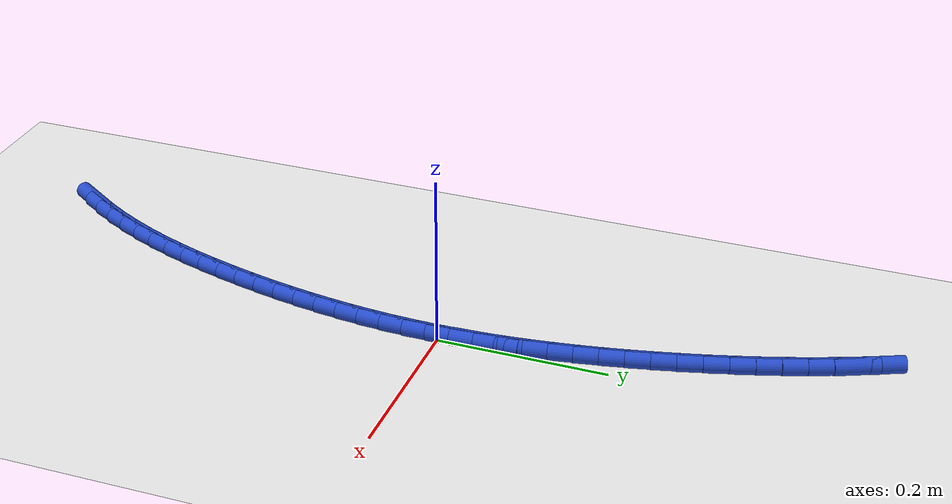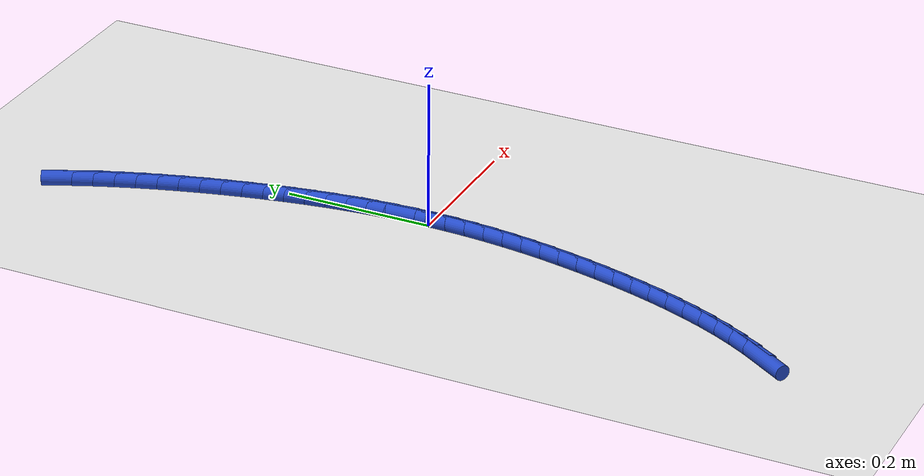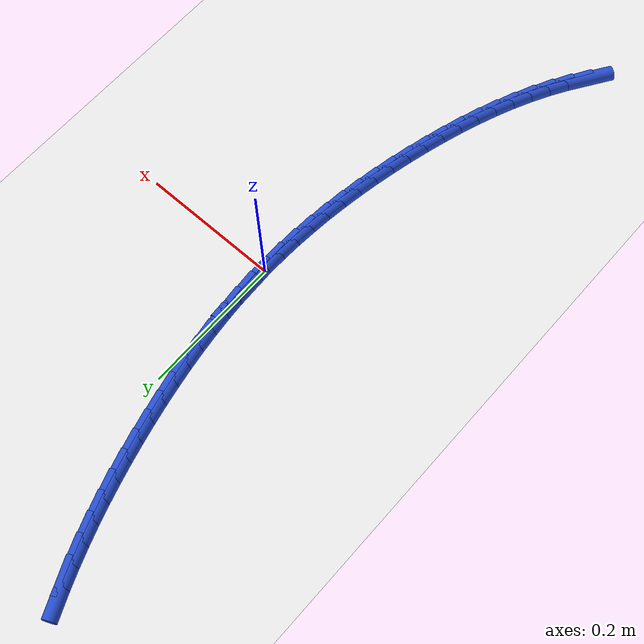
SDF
<sdf version="1.6">
 <world name="default">
  <model name="ground_plane">
   <static>1</static>
   <link name="link">
    <collision name="collision">
     <geometry><plane><normal>0 0 1</normal><size>100 100</size></plane></geometry>
     <surface><friction><ode><mu>100</mu><mu2>50</mu2></ode></friction></surface>
    </collision>
    <visual name="visual">
     <cast_shadows>0</cast_shadows>
     <geometry><plane><normal>0 0 1</normal><size>100 100</size></plane></geometry>
     <material>
      <script><uri>file://media/materials/scripts/gazebo.material</uri><name>Gazebo/WhiteGlow</name></script>
     </material>
    </visual>
   </link>
  </model>
  <model name="line">
   <link name="link_0">
    <pose>6.938893903907228e-18 2.7755575615628914e-17 0.01 0 1.57 -1.5524289410480985</pose>
    <collision name="collision">
     <geometry><cylinder><radius>0.01</radius><length>0.08</length></cylinder></geometry>
    </collision>
    <visual name="visual">
     <material>
      <script><name>Gazebo/Blue</name><uri>file://media/materials/scripts/gazebo.material</uri></script>
     </material>
     <geometry><cylinder><radius>0.01</radius><length>0.08</length></cylinder></geometry>
    </visual>
   </link>
   <link name="link_1">
    <pose>-0.0005123217134287023 0.027889875389102974 0.01 0 1.57 -1.521869817916308</pose>
    <collision name="collision">
     <geometry><cylinder><radius>0.01</radius><length>0.08</length></cylinder></geometry>
    </collision>
    <visual name="visual">
     <material>
      <script><name>Gazebo/Blue</name><uri>file://media/materials/scripts/gazebo.material</uri></script>
     </material>
     <geometry><cylinder><radius>0.01</radius><length>0.08</length></cylinder></geometry>
    </visual>
   </link>
   <link name="link_2">
    <pose>-0.0018776224476182656 0.055772738301384454 0.01 0 1.57 -1.4927778346295622</pose>
    <collision name="collision">
     <geometry><cylinder><radius>0.01</radius><length>0.08</length></cylinder></geometry>
    </collision>
    <visual name="visual">
     <material>
      <script><name>Gazebo/Blue</name><uri>file://media/materials/scripts/gazebo.material</uri></script>
     </material>
     <geometry><cylinder><radius>0.01</radius><length>0.08</length></cylinder></geometry>
    </visual>
   </link>
   <link name="link_3">
    <pose>-0.0040562519735710114 0.0836405849482692 0.01 0 1.57 -1.4651638115685985</pose>
    <collision name="collision">
     <geometry><cylinder><radius>0.01</radius><length>0.08</length></cylinder></geometry>
    </collision>
    <visual name="visual">
     <material>
      <script><name>Gazebo/Blue</name><uri>file://media/materials/scripts/gazebo.material</uri></script>
     </material>
     <geometry><cylinder><radius>0.01</radius><length>0.08</length></cylinder></geometry>
    </visual>
   </link>
   <link name="link_4">
    <pose>-0.007008560062289289 0.1114854115411819 0.01 0 1.57 -1.4390280610660429</pose>
    <collision name="collision">
     <geometry><cylinder><radius>0.01</radius><length>0.08</length></cylinder></geometry>
    </collision>
    <visual name="visual">
     <material>
      <script><name>Gazebo/Blue</name><uri>file://media/materials/scripts/gazebo.material</uri></script>
     </material>
     <geometry><cylinder><radius>0.01</radius><length>0.08</length></cylinder></geometry>
    </visual>
   </link>
   <link name="link_5">
    <pose>-0.010694896484775429 0.1392992142915473 0.01 0 1.57 -1.4143622360372599</pose>
    <collision name="collision">
     <geometry><cylinder><radius>0.01</radius><length>0.08</length></cylinder></geometry>
    </collision>
    <visual name="visual">
     <material>
      <script><name>Gazebo/Blue</name><uri>file://media/materials/scripts/gazebo.material</uri></script>
     </material>
     <geometry><cylinder><radius>0.01</radius><length>0.08</length></cylinder></geometry>
    </visual>
   </link>
   <link name="link_6">
    <pose>-0.015075611012031786 0.1670739894107901 0.01 0 1.57 -1.3911510972330334</pose>
    <collision name="collision">
     <geometry><cylinder><radius>0.01</radius><length>0.08</length></cylinder></geometry>
    </collision>
    <visual name="visual">
     <material>
      <script><name>Gazebo/Blue</name><uri>file://media/materials/scripts/gazebo.material</uri></script>
     </material>
     <geometry><cylinder><radius>0.01</radius><length>0.08</length></cylinder></geometry>
    </visual>
   </link>
   <link name="link_7">
    <pose>-0.020111053415060684 0.19480173311033505 0.01 0 1.57 -1.3693741558376797</pose>
    <collision name="collision">
     <geometry><cylinder><radius>0.01</radius><length>0.08</length></cylinder></geometry>
    </collision>
    <visual name="visual">
     <material>
      <script><name>Gazebo/Blue</name><uri>file://media/materials/scripts/gazebo.material</uri></script>
     </material>
     <geometry><cylinder><radius>0.01</radius><length>0.08</length></cylinder></geometry>
    </visual>
   </link>
   <link name="link_8">
    <pose>-0.025761573464864466 0.2224744416016069 0.01 0 1.57 -1.3490071657536002</pose>
    <collision name="collision">
     <geometry><cylinder><radius>0.01</radius><length>0.08</length></cylinder></geometry>
    </collision>
    <visual name="visual">
     <material>
      <script><name>Gazebo/Blue</name><uri>file://media/materials/scripts/gazebo.material</uri></script>
     </material>
     <geometry><cylinder><radius>0.01</radius><length>0.08</length></cylinder></geometry>
    </visual>
   </link>
   <link name="link_9">
    <pose>-0.03198752093244548 0.2500841110960303 0.01 0 1.57 -1.3299030340062081</pose>
    <collision name="collision">
     <geometry><cylinder><radius>0.01</radius><length>0.08</length></cylinder></geometry>
    </collision>
    <visual name="visual">
     <material>
      <script><name>Gazebo/Blue</name><uri>file://media/materials/scripts/gazebo.material</uri></script>
     </material>
     <geometry><cylinder><radius>0.01</radius><length>0.08</length></cylinder></geometry>
    </visual>
   </link>
   <link name="link_10">
    <pose>-0.038752307208098406 0.27762088722675393 0.01 0 1.57 -1.3107072377744697</pose>
    <collision name="collision">
     <geometry><cylinder><radius>0.01</radius><length>0.08</length></cylinder></geometry>
    </collision>
    <visual name="visual">
     <material>
      <script><name>Gazebo/Blue</name><uri>file://media/materials/scripts/gazebo.material</uri></script>
     </material>
     <geometry><cylinder><radius>0.01</radius><length>0.08</length></cylinder></geometry>
    </visual>
   </link>
   <link name="link_11">
    <pose>-0.046052892713377876 0.30505463710680275 0.01 0 1.57 -1.2905507844446895</pose>
    <collision name="collision">
     <geometry><cylinder><radius>0.01</radius><length>0.08</length></cylinder></geometry>
    </collision>
    <visual name="visual">
     <material>
      <script><name>Gazebo/Blue</name><uri>file://media/materials/scripts/gazebo.material</uri></script>
     </material>
     <geometry><cylinder><radius>0.01</radius><length>0.08</length></cylinder></geometry>
    </visual>
   </link>
   <link name="link_12">
    <pose>-0.0539069505251495 0.332342708203126 0.01 0 1.57 -1.2693611186420555</pose>
    <collision name="collision">
     <geometry><cylinder><radius>0.01</radius><length>0.08</length></cylinder></geometry>
    </collision>
    <visual name="visual">
     <material>
      <script><name>Gazebo/Blue</name><uri>file://media/materials/scripts/gazebo.material</uri></script>
     </material>
     <geometry><cylinder><radius>0.01</radius><length>0.08</length></cylinder></geometry>
    </visual>
   </link>
   <link name="link_13">
    <pose>-0.062332459379430515 0.3594422632287467 0.01 0 1.57 -1.2470750638376307</pose>
    <collision name="collision">
     <geometry><cylinder><radius>0.01</radius><length>0.08</length></cylinder></geometry>
    </collision>
    <visual name="visual">
     <material>
      <script><name>Gazebo/Blue</name><uri>file://media/materials/scripts/gazebo.material</uri></script>
     </material>
     <geometry><cylinder><radius>0.01</radius><length>0.08</length></cylinder></geometry>
    </visual>
   </link>
   <link name="link_14">
    <pose>-0.07134739801223824 0.38631046489668747 0.01 0 1.57 -1.2236270977165236</pose>
    <collision name="collision">
     <geometry><cylinder><radius>0.01</radius><length>0.08</length></cylinder></geometry>
    </collision>
    <visual name="visual">
     <material>
      <script><name>Gazebo/Blue</name><uri>file://media/materials/scripts/gazebo.material</uri></script>
     </material>
     <geometry><cylinder><radius>0.01</radius><length>0.08</length></cylinder></geometry>
    </visual>
   </link>
   <link name="link_15">
    <pose>-0.08096974515959005 0.4129044759199715 0.01 0 1.57 -1.198949799476462</pose>
    <collision name="collision">
     <geometry><cylinder><radius>0.01</radius><length>0.08</length></cylinder></geometry>
    </collision>
    <visual name="visual">
     <material>
      <script><name>Gazebo/Blue</name><uri>file://media/materials/scripts/gazebo.material</uri></script>
     </material>
     <geometry><cylinder><radius>0.01</radius><length>0.08</length></cylinder></geometry>
    </visual>
   </link>
   <link name="link_16">
    <pose>-0.09121747955750317 0.4391814590116214 0.01 0 1.57 -1.1729744812151703</pose>
    <collision name="collision">
     <geometry><cylinder><radius>0.01</radius><length>0.08</length></cylinder></geometry>
    </collision>
    <visual name="visual">
     <material>
      <script><name>Gazebo/Blue</name><uri>file://media/materials/scripts/gazebo.material</uri></script>
     </material>
     <geometry><cylinder><radius>0.01</radius><length>0.08</length></cylinder></geometry>
    </visual>
   </link>
   <link name="link_17">
    <pose>-0.10210857994199496 0.4650985768846603 0.01 0 1.57 -1.1456320425305688</pose>
    <collision name="collision">
     <geometry><cylinder><radius>0.01</radius><length>0.08</length></cylinder></geometry>
    </collision>
    <visual name="visual">
     <material>
      <script><name>Gazebo/Blue</name><uri>file://media/materials/scripts/gazebo.material</uri></script>
     </material>
     <geometry><cylinder><radius>0.01</radius><length>0.08</length></cylinder></geometry>
    </visual>
   </link>
   <link name="link_221">
    <pose>-0.13968469183947343 -0.5083093750099107 0.01 0 1.57 0.9858798109256598</pose>
    <collision name="collision">
     <geometry><cylinder><radius>0.01</radius><length>0.08</length></cylinder></geometry>
    </collision>
    <visual name="visual">
     <material>
      <script><name>Gazebo/Blue</name><uri>file://media/materials/scripts/gazebo.material</uri></script>
     </material>
     <geometry><cylinder><radius>0.01</radius><length>0.08</length></cylinder></geometry>
    </visual>
   </link>
   <link name="link_222">
    <pose>-0.12446523040751438 -0.48532682453395676 0.01 0 1.57 1.0380324049909628</pose>
    <collision name="collision">
     <geometry><cylinder><radius>0.01</radius><length>0.08</length></cylinder></geometry>
    </collision>
    <visual name="visual">
     <material>
      <script><name>Gazebo/Blue</name><uri>file://media/materials/scripts/gazebo.material</uri></script>
     </material>
     <geometry><cylinder><radius>0.01</radius><length>0.08</length></cylinder></geometry>
    </visual>
   </link>
   <link name="link_223">
    <pose>-0.11039567598790793 -0.46146539344109144 0.01 0 1.57 1.0861010663685253</pose>
    <collision name="collision">
     <geometry><cylinder><radius>0.01</radius><length>0.08</length></cylinder></geometry>
    </collision>
    <visual name="visual">
     <material>
      <script><name>Gazebo/Blue</name><uri>file://media/materials/scripts/gazebo.material</uri></script>
     </material>
     <geometry><cylinder><radius>0.01</radius><length>0.08</length></cylinder></geometry>
    </visual>
   </link>
   <link name="link_224">
    <pose>-0.09741590561810687 -0.43681682877313094 0.01 0 1.57 1.1301217727305635</pose>
    <collision name="collision">
     <geometry><cylinder><radius>0.01</radius><length>0.08</length></cylinder></geometry>
    </collision>
    <visual name="visual">
     <material>
      <script><name>Gazebo/Blue</name><uri>file://media/materials/scripts/gazebo.material</uri></script>
     </material>
     <geometry><cylinder><radius>0.01</radius><length>0.08</length></cylinder></geometry>
    </visual>
   </link>
   <link name="link_225">
    <pose>-0.08546434986673689 -0.4114745198187615 0.01 0 1.57 1.1702559611969683</pose>
    <collision name="collision">
     <geometry><cylinder><radius>0.01</radius><length>0.08</length></cylinder></geometry>
    </collision>
    <visual name="visual">
     <material>
      <script><name>Gazebo/Blue</name><uri>file://media/materials/scripts/gazebo.material</uri></script>
     </material>
     <geometry><cylinder><radius>0.01</radius><length>0.08</length></cylinder></geometry>
    </visual>
   </link>
   <link name="link_226">
    <pose>-0.0744794393024241 -0.38553185586666994 0.01 0 1.57 1.2066923961009564</pose>
    <collision name="collision">
     <geometry><cylinder><radius>0.01</radius><length>0.08</length></cylinder></geometry>
    </collision>
    <visual name="visual">
     <material>
      <script><name>Gazebo/Blue</name><uri>file://media/materials/scripts/gazebo.material</uri></script>
     </material>
     <geometry><cylinder><radius>0.01</radius><length>0.08</length></cylinder></geometry>
    </visual>
   </link>
   <link name="link_227">
    <pose>-0.06439960449379449 -0.3590822262055431 0.01 0 1.57 1.2396302926955263</pose>
    <collision name="collision">
     <geometry><cylinder><radius>0.01</radius><length>0.08</length></cylinder></geometry>
    </collision>
    <visual name="visual">
     <material>
      <script><name>Gazebo/Blue</name><uri>file://media/materials/scripts/gazebo.material</uri></script>
     </material>
     <geometry><cylinder><radius>0.01</radius><length>0.08</length></cylinder></geometry>
    </visual>
   </link>
   <link name="link_228">
    <pose>-0.055163276009474224 -0.33221902012406795 0.01 0 1.57 1.2692666380901216</pose>
    <collision name="collision">
     <geometry><cylinder><radius>0.01</radius><length>0.08</length></cylinder></geometry>
    </collision>
    <visual name="visual">
     <material>
      <script><name>Gazebo/Blue</name><uri>file://media/materials/scripts/gazebo.material</uri></script>
     </material>
     <geometry><cylinder><radius>0.01</radius><length>0.08</length></cylinder></geometry>
    </visual>
   </link>
   <link name="link_229">
    <pose>-0.04670888441808936 -0.30503562691093156 0.01 0 1.57 1.2957869772473865</pose>
    <collision name="collision">
     <geometry><cylinder><radius>0.01</radius><length>0.08</length></cylinder></geometry>
    </collision>
    <visual name="visual">
     <material>
      <script><name>Gazebo/Blue</name><uri>file://media/materials/scripts/gazebo.material</uri></script>
     </material>
     <geometry><cylinder><radius>0.01</radius><length>0.08</length></cylinder></geometry>
    </visual>
   </link>
   <link name="link_230">
    <pose>-0.03897486028826578 -0.2776254358548199 0.01 0 1.57 1.3193793062671326</pose>
    <collision name="collision">
     <geometry><cylinder><radius>0.01</radius><length>0.08</length></cylinder></geometry>
    </collision>
    <visual name="visual">
     <material>
      <script><name>Gazebo/Blue</name><uri>file://media/materials/scripts/gazebo.material</uri></script>
     </material>
     <geometry><cylinder><radius>0.01</radius><length>0.08</length></cylinder></geometry>
    </visual>
   </link>
   <link name="link_231">
    <pose>-0.03190011780589878 -0.25008137998095803 0.01 0 1.57 1.3415622131340024</pose>
    <collision name="collision">
     <geometry><cylinder><radius>0.01</radius><length>0.08</length></cylinder></geometry>
    </collision>
    <visual name="visual">
     <material>
      <script><name>Gazebo/Blue</name><uri>file://media/materials/scripts/gazebo.material</uri></script>
     </material>
     <geometry><cylinder><radius>0.01</radius><length>0.08</length></cylinder></geometry>
    </visual>
   </link>
   <link name="link_232">
    <pose>-0.025456342947728635 -0.22246547412417386 0.01 0 1.57 1.364630770377124</pose>
    <collision name="collision">
     <geometry><cylinder><radius>0.01</radius><length>0.08</length></cylinder></geometry>
    </collision>
    <visual name="visual">
     <material>
      <script><name>Gazebo/Blue</name><uri>file://media/materials/scripts/gazebo.material</uri></script>
     </material>
     <geometry><cylinder><radius>0.01</radius><length>0.08</length></cylinder></geometry>
    </visual>
   </link>
   <link name="link_233">
    <pose>-0.019668303336427842 -0.19478965381654717 0.01 0 1.57 1.388808176765615</pose>
    <collision name="collision">
     <geometry><cylinder><radius>0.01</radius><length>0.08</length></cylinder></geometry>
    </collision>
    <visual name="visual">
     <material>
      <script><name>Gazebo/Blue</name><uri>file://media/materials/scripts/gazebo.material</uri></script>
     </material>
     <geometry><cylinder><radius>0.01</radius><length>0.08</length></cylinder></geometry>
    </visual>
   </link>
   <link name="link_234">
    <pose>-0.014565610722357528 -0.16706128445046398 0.01 0 1.57 1.4141088744221508</pose>
    <collision name="collision">
     <geometry><cylinder><radius>0.01</radius><length>0.08</length></cylinder></geometry>
    </collision>
    <visual name="visual">
     <material>
      <script><name>Gazebo/Blue</name><uri>file://media/materials/scripts/gazebo.material</uri></script>
     </material>
     <geometry><cylinder><radius>0.01</radius><length>0.08</length></cylinder></geometry>
    </visual>
   </link>
   <link name="link_235">
    <pose>-0.010177876855878851 -0.1392877314183105 0.01 0 1.57 1.4405425316202927</pose>
    <collision name="collision">
     <geometry><cylinder><radius>0.01</radius><length>0.08</length></cylinder></geometry>
    </collision>
    <visual name="visual">
     <material>
      <script><name>Gazebo/Blue</name><uri>file://media/materials/scripts/gazebo.material</uri></script>
     </material>
     <geometry><cylinder><radius>0.01</radius><length>0.08</length></cylinder></geometry>
    </visual>
   </link>
   <link name="link_236">
    <pose>-0.00653471348735295 -0.11147636011247272 0.01 0 1.57 1.4681130174804193</pose>
    <collision name="collision">
     <geometry><cylinder><radius>0.01</radius><length>0.08</length></cylinder></geometry>
    </collision>
    <visual name="visual">
     <material>
      <script><name>Gazebo/Blue</name><uri>file://media/materials/scripts/gazebo.material</uri></script>
     </material>
     <geometry><cylinder><radius>0.01</radius><length>0.08</length></cylinder></geometry>
    </visual>
   </link>
   <link name="link_237">
    <pose>-0.00366573236714097 -0.0836345359253368 0.01 0 1.57 1.4968173293099623</pose>
    <collision name="collision">
     <geometry><cylinder><radius>0.01</radius><length>0.08</length></cylinder></geometry>
    </collision>
    <visual name="visual">
     <material>
      <script><name>Gazebo/Blue</name><uri>file://media/materials/scripts/gazebo.material</uri></script>
     </material>
     <geometry><cylinder><radius>0.01</radius><length>0.08</length></cylinder></geometry>
    </visual>
   </link>
   <link name="link_238">
    <pose>-0.0016005452456040103 -0.05576962424928803 0.01 0 1.57 1.5266445017797492</pose>
    <collision name="collision">
     <geometry><cylinder><radius>0.01</radius><length>0.08</length></cylinder></geometry>
    </collision>
    <visual name="visual">
     <material>
      <script><name>Gazebo/Blue</name><uri>file://media/materials/scripts/gazebo.material</uri></script>
     </material>
     <geometry><cylinder><radius>0.01</radius><length>0.08</length></cylinder></geometry>
    </visual>
   </link>
   <link name="link_239">
    <pose>-0.00036876387310332643 -0.02788899047671404 0.01 0 1.57 1.5575745364764406</pose>
    <collision name="collision">
     <geometry><cylinder><radius>0.01</radius><length>0.08</length></cylinder></geometry>
    </collision>
    <visual name="visual">
     <material>
      <script><name>Gazebo/Blue</name><uri>file://media/materials/scripts/gazebo.material</uri></script>
     </material>
     <geometry><cylinder><radius>0.01</radius><length>0.08</length></cylinder></geometry>
    </visual>
   </link>
   <link name="link_240">
    <pose>-8.673617379884035e-19 -1.3877787807814457e-16 0.01 0 1.57 -1.55201525389704</pose>
    <collision name="collision">
     <geometry><cylinder><radius>0.01</radius><length>0.08</length></cylinder></geometry>
    </collision>
    <visual name="visual">
     <material>
      <script><name>Gazebo/Blue</name><uri>file://media/materials/scripts/gazebo.material</uri></script>
     </material>
     <geometry><cylinder><radius>0.01</radius><length>0.08</length></cylinder></geometry>
    </visual>
   </link>
   <link name="link_241">
    <pose>-0.0005238653766551742 0.02788998178846758 0.01 0 1.57 -1.5189805089376687</pose>
    <collision name="collision">
     <geometry><cylinder><radius>0.01</radius><length>0.08</length></cylinder></geometry>
    </collision>
    <visual name="visual">
     <material>
      <script><name>Gazebo/Blue</name><uri>file://media/materials/scripts/gazebo.material</uri></script>
     </material>
     <geometry><cylinder><radius>0.01</radius><length>0.08</length></cylinder></geometry>
    </visual>
   </link>
   <link name="link_242">
    <pose>-0.001969971753429993 0.055773589496303004 0.01 0 1.57 -1.5354901332722581</pose>
    <collision name="collision">
     <geometry><cylinder><radius>0.01</radius><length>0.08</length></cylinder></geometry>
    </collision>
    <visual name="visual">
     <material>
      <script><name>Gazebo/Blue</name><uri>file://media/materials/scripts/gazebo.material</uri></script>
     </material>
     <geometry><cylinder><radius>0.01</radius><length>0.08</length></cylinder></geometry>
    </visual>
   </link>
  </model>
 </world>
</sdf>
